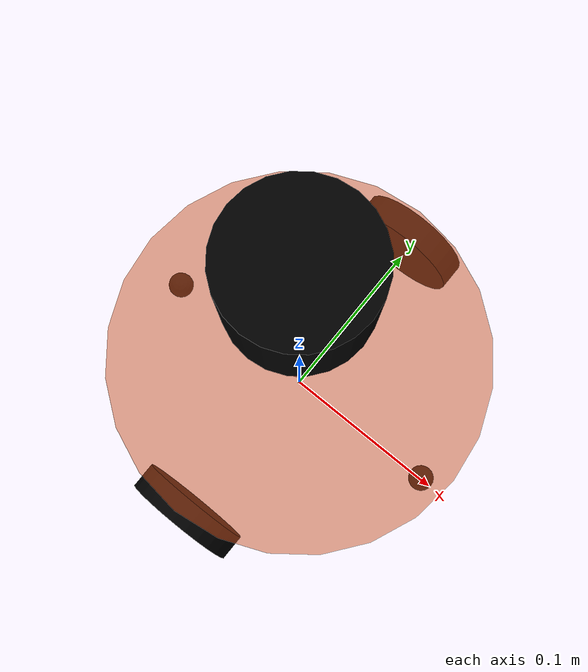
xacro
<?xml version="1.0" ?>
<robot name="car_top" xmlns:xacro="http://www.ros.org/wiki/xacro" >

    <!-- 封装常量 -->
    <xacro:property name="PI" value="3.1415" />

    <!-- 添加头文件，碰撞参数和惯性矩阵 -->
    <xacro:include filename="head/inertia_matrix.urdf.xacro" />

    <xacro:include filename="xacro01_car_base.urdf.xacro" />
    <xacro:include filename="xacro02_car_laser.urdf.xacro" />

    <xacro:include filename="gazebo_car/car_control.xacro" />
    <xacro:include filename="gazebo_car/car_laser.xacro" />
</robot>

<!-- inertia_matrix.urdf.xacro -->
<robot name="base" xmlns:xacro="http://wiki.ros.org/xacro">
    <!-- Macro for inertia matrix -->
    <xacro:macro name="sphere_inertial_matrix" params="m r">
        <inertial>
            <mass value="${m}" />
            <inertia ixx="${2*m*r*r/5}" ixy="0" ixz="0"
                iyy="${2*m*r*r/5}" iyz="0"
                izz="${2*m*r*r/5}" />
        </inertial>
    </xacro:macro>

    <xacro:macro name="cylinder_inertial_matrix" params="m r h">
        <inertial>
            <mass value="${m}" />
            <inertia ixx="${m*(3*r*r+h*h)/12}" ixy = "0" ixz = "0"
                iyy="${m*(3*r*r+h*h)/12}" iyz = "0"
                izz="${m*r*r/2}" />
        </inertial>
    </xacro:macro>

    <xacro:macro name="Box_inertial_matrix" params="m l w h">
       <inertial>
               <mass value="${m}" />
               <inertia ixx="${m*(h*h + l*l)/12}" ixy = "0" ixz = "0"
                   iyy="${m*(w*w + l*l)/12}" iyz= "0"
                   izz="${m*(w*w + h*h)/12}" />
       </inertial>
   </xacro:macro>
</robot>

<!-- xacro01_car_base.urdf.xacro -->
<robot name="car_base" xmlns:xacro="http://www.ros.org/wiki/xacro" >

    <!-- 宏:颜色设置 -->
    <material name="yellow">
        <color rgba="0.8 0.3 0.1 0.5" />
    </material>

    <material name="black">
        <color rgba="0.0 0.0 0.0 1.0" />
    </material>

    <!-- 封装底盘属性 -->
    <xacro:property name="base_footprint_radius" value="0.001" />
    <xacro:property name="base_link_radius" value="0.1" />
    <xacro:property name="base_link_length" value="0.08" />
    <xacro:property name="ground_clearance" value="0.015" />
    <xacro:property name="base_link_mass" value="0.5" />

    <!-- base_footprint -->
    <link name="base_footprint">
      <visual>
        <geometry>
          <sphere radius="${base_footprint_radius}" />
        </geometry>
      </visual>
    </link>

    <!-- 添加底盘 -->
    <link name="base_link">
        <visual>
            <geometry>
                <cylinder radius="${base_link_radius}" length="${base_link_length}" />
            </geometry>
            <origin xyz="0 0 0" rpy="0 0 0" />
            <material name="yellow" />
        </visual>

        <collision>
            <geometry>
                <cylinder radius="${base_link_radius}" length="${base_link_length}" />
            </geometry>
            <origin xyz="0 0 0" rpy="0 0 0" />
        </collision>

        <xacro:cylinder_inertial_matrix m="${base_link_mass}" r="${base_link_radius}" h="${base_link_length}" />
    </link>

    <gazebo reference="base_link">
        <material>Gazebo/Yellow</material>
    </gazebo>

    <joint name="base_link2base_footprint" type="fixed">
        <parent link="base_footprint" />
        <child link="base_link" />
        <origin xyz="0 0 ${ground_clearance+base_link_length/2}" rpy ="0 0 0" />
        <axis xyz="0 0 0" />
    </joint>

    <!-- 驱动轮 -->
    <!-- 封装驱动轮属性 -->
    <xacro:property name="add_wheel_radius" value="0.0325" />
    <xacro:property name="add_wheel_length" value="0.015" />
    <xacro:property name="add_wheel_mass" value="0.05" />

    <!-- 宏：驱动轮设置 -->
    <xacro:macro name="add_wheel_func" params="wheel_name flag" >
        <link name="${wheel_name}_wheel">
            <visual>
                <geometry>
                    <cylinder radius="${add_wheel_radius}" length="${add_wheel_length}" />
                </geometry>
                <origin xyz="0 0 0" rpy="${PI/2} 0 0" />
                <material name="black" />
            </visual>

            <collision>
                 <geometry>
                    <cylinder radius="${add_wheel_radius}" length="${add_wheel_length}" />
                </geometry>
                <origin xyz="0 0 0" rpy="${PI/2} 0 0" />
            </collision>

            <xacro:cylinder_inertial_matrix m="${add_wheel_mass}" r="${add_wheel_radius}" h="${add_wheel_length}" />
        </link>

        <joint name="${wheel_name}_wheel2base_link" type="continuous">
            <parent link="base_link" />
            <child link="${wheel_name}_wheel" />
            <origin xyz="0 ${base_link_radius*flag} ${add_wheel_radius-(ground_clearance+base_link_length/2)}" />
            <axis xyz="0 1 0" />
        </joint>

        <gazebo reference="${wheel_name}_wheel">
            <material>Gazebo/Red</material>
        </gazebo>

    </xacro:macro>

     <!-- 添加驱动轮 -->
    <xacro:add_wheel_func wheel_name="left" flag="1" />
    <xacro:add_wheel_func wheel_name="right" flag="-1" />

    <!-- 封装支撑轮属性 -->
    <xacro:property name="support_wheel_radius" value="${ground_clearance/2}" />
    <xacro:property name="support_wheel_mass" value= "0.01" />

    <!-- 宏：支撑轮设置 -->
    <xacro:macro name="support_wheel_func" params="name flag" >
        <link name="${name}_wheel">
            <visual>
                <geometry>
                    <sphere radius="${support_wheel_radius}" />
                </geometry>
                <origin xyz="0 0 0" rpy="0 0 0" />
                <material name="black" />
            </visual>

            <collision>
                 <geometry>
                    <sphere radius="${support_wheel_radius}" />
                </geometry>
                <origin xyz="0 0 0" rpy="0 0 0" />
            </collision>

            <xacro:sphere_inertial_matrix m="${support_wheel_mass}" r="${support_wheel_radius}"/>
        </link>

        <gazebo reference="${name}_wheel">
            <material>Gazebo/Black</material>
        </gazebo>

        <joint name="${name}_wheel2base_link" type="continuous">
            <parent link="base_link" />
            <child link="${name}_wheel" />
            <origin xyz="${flag*(base_link_radius-support_wheel_radius)} 0 ${support_wheel_radius-(ground_clearance+base_link_length/2)}" />
            <axis xyz="1 1 1" />
        </joint>
    </xacro:macro>

    <!-- 添加支撑轮 -->
    <xacro:support_wheel_func name="front" flag="1" />
    <xacro:support_wheel_func name="back" flag="-1" />

</robot>

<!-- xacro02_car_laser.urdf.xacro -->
<!--
     小车底盘添加雷达
-->
<robot name="car_laser" xmlns:xacro="http://wiki.ros.org/xacro">

    <!-- 雷达支架 -->
    <xacro:property name="support_length" value="0.15" /> <!-- 支架长度 -->
    <xacro:property name="support_radius" value="0.01" /> <!-- 支架半径 -->
    <xacro:property name="support_x" value="0.0" /> <!-- 支架安装的x坐标 -->
    <xacro:property name="support_y" value="0.0" /> <!-- 支架安装的y坐标 -->
    <xacro:property name="support_z" value="${base_link_length / 2 + support_length / 2}" /> <!-- 支架安装的z坐标:底盘高度 / 2 + 支架高度 / 2  -->

    <xacro:property name="support_mass" value="0.02" /> <!-- 支架的质量 -->

    <link name="support">
        <visual>
            <geometry>
                <cylinder radius="${support_radius}" length="${support_length}" />
            </geometry>
            <origin xyz="0.0 0.0 0.0" rpy="0.0 0.0 0.0" />
            <material name="red">
                <color rgba="0.8 0.2 0.0 0.8" />
            </material>
        </visual>

        <collision>
            <geometry>
                <cylinder radius="${support_radius}" length="${support_length}" />
            </geometry>
            <origin xyz="0.0 0.0 0.0" rpy="0.0 0.0 0.0" />
        </collision>

        <xacro:cylinder_inertial_matrix m="${support_mass}" r="${support_radius}" h="${support_length}" />
    </link>

    <joint name="support2base_link" type="fixed">
        <parent link="base_link" />
        <child link="support" />
        <origin xyz="${support_x} ${support_y} ${support_z}" />
    </joint>

    <gazebo reference="support">
        <material>Gazebo/White</material>
    </gazebo>

    <!-- 雷达属性 -->
    <xacro:property name="laser_length" value="0.05" /> <!-- 雷达长度 -->
    <xacro:property name="laser_radius" value="0.03" /> <!-- 雷达半径 -->
    <xacro:property name="laser_x" value="0.0" /> <!-- 雷达安装的x坐标 -->
    <xacro:property name="laser_y" value="0.0" /> <!-- 雷达安装的y坐标 -->
    <xacro:property name="laser_z" value="${support_length / 2 + laser_length / 2}" /> <!-- 雷达安装的z坐标:支架高度 / 2 + 雷达高度 / 2  -->

    <xacro:property name="laser_mass" value="0.1" /> <!-- 雷达的质量 -->

    <!-- 雷达关节以及link -->
    <link name="laser">
        <visual>
            <geometry>
                <cylinder radius="${laser_radius}" length="${laser_length}" />
            </geometry>
            <origin xyz="0.0 0.0 0.0" rpy="0.0 0.0 0.0" />
            <material name="black" />
        </visual>

        <collision>
            <geometry>
                <cylinder radius="${laser_radius}" length="${laser_length}" />
            </geometry>
            <origin xyz="0.0 0.0 0.0" rpy="0.0 0.0 0.0" />
        </collision>

        <xacro:cylinder_inertial_matrix m="${laser_mass}" r="${laser_radius}" h="${laser_length}" />
    </link>

    <joint name="laser2support" type="fixed">
        <parent link="support" />
        <child link="laser" />
        <origin xyz="${laser_x} ${laser_y} ${laser_z}" />
    </joint>

    <gazebo reference="laser">
        <material>Gazebo/Black</material>
    </gazebo>
</robot>
